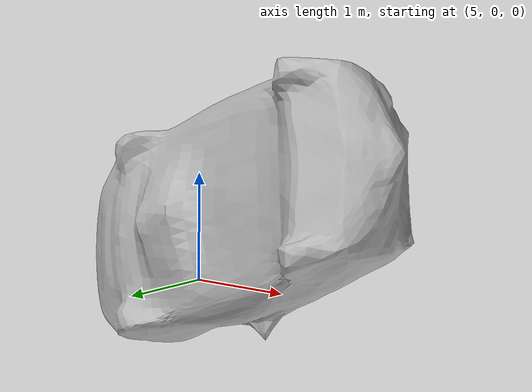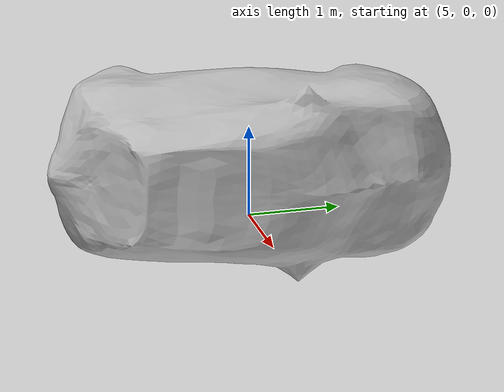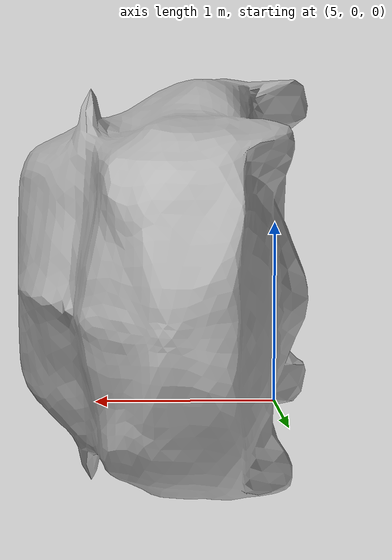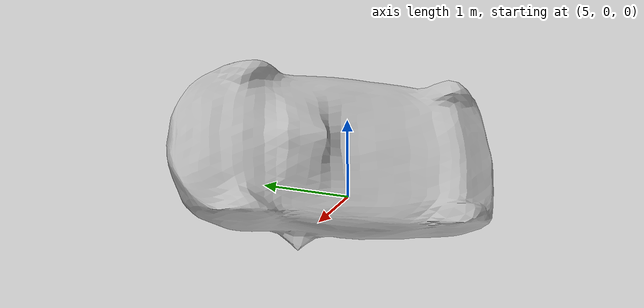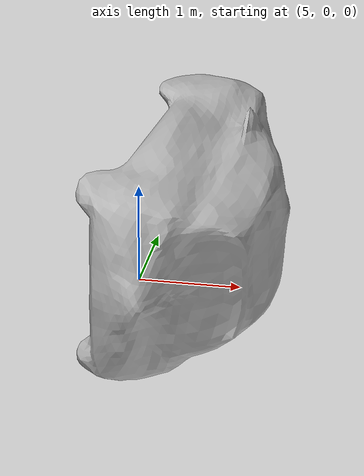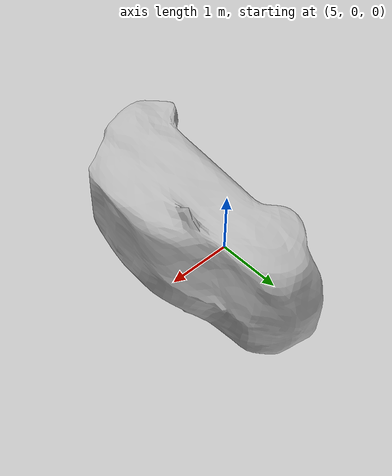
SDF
<?xml version="1.0" ?>
<sdf version="1.6">
  <model name="car">
    <static>true</static>
    <link name="link">
      <collision name="collision">
        <geometry>
          <mesh>
            <scale>2 2 2</scale>
            <rpy>0 0 0</rpy>
            <uri>model://car/meshes/car.obj</uri>
          </mesh>
        </geometry>
      </collision>
      <visual name="visual">
        <geometry>
          <mesh>
            <scale>2 2 2</scale>
            <uri>model://car/meshes/car.obj</uri>
          </mesh>
        </geometry>
      </visual>

    </link>
      <selfCollide>1</selfCollide>
      <pose>4.7846 0.076029 0.695143 1.56704 0.041396 1.48017</pose>
      <allow_auto_disable>0</allow_auto_disable>
  </model>
</sdf>
